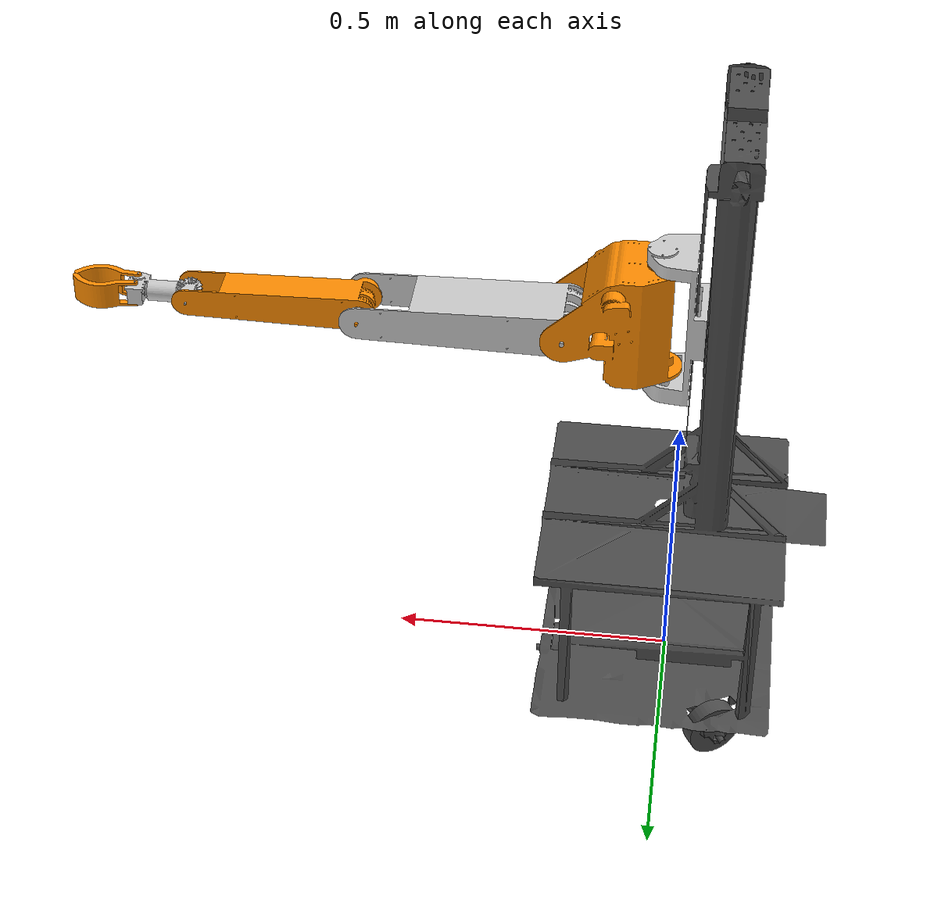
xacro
<?xml version="1.0"?>

<robot name="xmbot" xmlns:xacro="http://www.ros.org/wiki/xacro">

  <!-- The following xacro:include files set up definitions of parts of the robot body -->
  <xacro:include filename="$(find xm_arm_description)/urdf/materials.urdf.xacro" />
  <xacro:include filename="$(find xm_arm_description)/urdf/xm_base.urdf.xacro" />
  <xacro:include filename="$(find xm_arm_description)/urdf/xm_wheel.urdf.xacro" />
  <xacro:include filename="$(find xm_arm_description)/urdf/xm_arm.urdf.xacro" />
  <xacro:include filename="$(find xm_arm_description)/urdf/xm_gripper.urdf.xacro" />
  <xacro:include filename="$(find xm_arm_description)/urdf/xm_kinect.urdf.xacro" />
  <xacro:include filename="$(find xm_arm_description)/urdf/xm_laser.urdf.xacro" />

  <!-- Attach the base -->
  <base name="base" color="DarkGrey" />

  <!-- Add the drive wheels -->
  <wheel parent="base" suffix="1" color="DarkGrey" type="fixed"
         origin_xyz="0.19419 0.00022708 -0.042" origin_rpy="-1.5708 0 -1.5708"
         inert_origin_xyz="8.0491E-16 -1.3878E-17 -0.0042221"
         inert_ixx="0.00030696" inert_ixy="-3.4634E-22" inert_ixz="-7.3136E-19"
         inert_iyy="0.00030696" inert_iyz="8.9342E-21" inert_izz="0.00029643" />
  <wheel parent="base" suffix="2" color="DarkGrey" type="fixed"
         origin_xyz="-0.096968 -0.16833 -0.042" origin_rpy="-1.5708 0 2.618"
         inert_origin_xyz="-1.3878E-17 1.3878E-17 -0.0042221"
         inert_ixx="0.00030696" inert_ixy="1.0391E-20" inert_ixz="1.3553E-20"
         inert_iyy="0.00030696" inert_iyz="4.616E-21" inert_izz="0.00029643" />
  <wheel parent="base" suffix="3" color="DarkGrey" type="fixed"
         origin_xyz="-0.097362 0.1681 -0.042"   origin_rpy="-1.5708 0 0.5236"
         inert_origin_xyz="1.4572E-15 0 -0.0042221"
         inert_ixx="0.00030696" inert_ixy="-3.3256E-21" inert_ixz="2.7105E-20"
         inert_iyy="0.00030696" inert_iyz="-1.1933E-20" inert_izz="0.00029643" />

  <!-- Attach the arm -->
  <lift  name="lift"  parent="base" color="OffWhite" />
  <waist name="waist" parent="lift" color="Orange" />
  <big_arm name="big_arm" parent="waist" color="OffWhite" />
  <forearm name="forearm" parent="big_arm" color="Orange" />
  <wrist_pitching name="wrist_pitching" parent="forearm" color="OffWhite" />
  <wrist_rotation name="wrist_rotation" parent="wrist_pitching" color="OffWhite" />

  <!-- Attach the gripper -->
  <finger_left  name="finger_left"  parent="wrist_rotation" color="Orange" type="revolute" />
  <finger_right name="finger_right" parent="wrist_rotation" color="Orange" type="revolute" />
  <gripper_frame name="gripper_frame" parent="wrist_rotation" color="OffWhite" type="fixed" />

  <!-- Attach the kinect -->
  <head_kinect name="kinect" parent="base" color="DarkGrey" type="fixed" />

  <!-- Attach the laser -->
  <laser name="laser" parent="base" color="DarkGrey" />

</robot>

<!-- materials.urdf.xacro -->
<robot>

  <!-- Put all the color definitions in a separate file -->
  <material name="DarkBlack">
    <color rgba="0.0 0.0 0.0 1.0" />
  </material>

  <material name="Black">
    <color rgba="0.2 0.2 0.2 1.0" />
  </material>

   <material name="TransparentBlack">
    <color rgba="0.2 0.2 0.2 0.8" />
  </material>

  <material name="Orange">
    <color rgba="1.0 0.55 0.0 1.0" />
  </material>

  <material name="Grey">
    <color rgba="0.7 0.7 0.7 1.0" />
  </material>

  <material name="DarkGrey">
    <color rgba="0.3 0.3 0.3 1.0" />
  </material>

  <material name="Red">
    <color rgba="0.8 0.0 0.0 1.0" />
  </material>

  <material name="White">
    <color rgba="1.0 1.0 1.0 1.0" />
  </material>

  <material name="OffWhite">
    <color rgba="0.8 0.8 0.8 1.0" />
  </material>

  <material name="Blue">
    <color rgba="0.0 0.0 0.8 1.0" />
  </material>

  <material name="Green">
    <color rgba="0.0 0.8 0.0 1.0" />
  </material>

  <material name="TransparentGreen">
    <color rgba="0.0 0.8 0.0 0.5" />
  </material>

</robot>

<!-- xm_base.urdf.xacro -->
<robot name="base" xmlns:xacro="http://www.ros.org/wiki/xacro">

  <!-- The base xacro macro -->
  <macro name="base" params="name color">
    <link name="${name}_link">
      <inertial>
        <origin xyz="-0.030096 -0.00033289 0.43437" rpy="0 0 0" />
        <mass value="28.429" />
        <inertia ixx="3.3043" ixy="0.00011321" ixz="-0.22301"
                 iyy="3.3216" iyz="0.0036429" izz="0.40235" />
      </inertial>
      <visual>
        <origin xyz="0 0 0" rpy="0 0 0" />
        <geometry>
          <mesh filename="package://xm_arm_description/meshes/${name}_link.stl" />
        </geometry>
        <material name="${color}" />
      </visual>
      <collision>
        <origin xyz="0 0 0" rpy="0 0 0" />
        <geometry>
		      <mesh filename="package://xm_arm_description/meshes/${name}_link_l.stl" />
        </geometry>
      </collision>
    </link>
  </macro>

  <link name="base_footprint">
      <visual>
        <origin xyz="0 0 0" rpy="0 0 0" />
        <geometry>
          <box size="0.05 0.05 0.001" />
        </geometry>
        <material name="TransparentGreen" />
      </visual>
  </link>

  <joint name="base_joint" type="fixed">
    <origin xyz="0 0 0" rpy="0 0 0" />
    <parent link="base_footprint" />
    <child  link="base_link" />
  </joint>

</robot>

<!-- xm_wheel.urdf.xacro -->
<robot name="wheel" xmlns:xacro="http://www.ros.org/wiki/xacro">

  <!-- The wheel xacro macro -->
  <macro name="wheel" params="suffix parent color origin_xyz origin_rpy type inert_origin_xyz inert_ixx inert_ixy inert_ixz inert_iyy inert_iyz inert_izz">
    <joint name="joint_wheel_${suffix}" type="${type}">
      <origin xyz="${origin_xyz}" rpy="${origin_rpy}" />
      <parent link="${parent}_link" />
      <child link="link_wheel_${suffix}" />
      <axis xyz="0 0 1" />
    </joint>

    <link name="link_wheel_${suffix}">
      <inertial>
        <origin xyz="${inert_origin_xyz}" rpy="0 0 0" />
        <mass value="0.34065" />
        <inertia ixx="${inert_ixx}" ixy="${inert_ixy}" ixz="${inert_ixz}"
                 iyy="${inert_iyy}" iyz="${inert_iyz}" izz="${inert_izz}" />
      </inertial>
      <visual>
        <origin xyz="0 0 0" rpy="0 0 0" />
        <geometry>
          <mesh filename="package://xm_arm_description/meshes/link_wheel_${suffix}.stl" />
        </geometry>
        <material name="${color}" />
      </visual>
      <collision>
	      <origin xyz="0 0 0" rpy="0 0 0" />
        <geometry>
          <mesh filename="package://xm_arm_description/meshes/link_wheel_${suffix}_l.stl" />
        </geometry>
      </collision>
    </link>
  </macro>

</robot>

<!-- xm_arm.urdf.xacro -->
<robot name="arm" xmlns:xacro="http://www.ros.org/wiki/xacro">

  <!--The lift xacro macro-->
  <macro name="lift" params="parent name color">
    <joint name="joint_${name}" type="prismatic">
      <origin xyz="-0.04456 0.00022708 0.72985" rpy="-2.7756E-17 0 -1.5708" />
      <parent link="${parent}_link" />
      <child  link="link_${name}" />
      <axis xyz="0 0 -1" />
      <limit lower="-0.15" upper="0.15" effort="500" velocity="1" />
    </joint>

    <link name="link_${name}">
       <inertial>
         <origin xyz="-8.3267E-17 0.048515 0.0020048" rpy="0 0 0" />
         <mass value="1.7076" />
         <inertia ixx="0.015015" ixy="2.1531E-18" ixz="-3.952E-19"
                  iyy="0.015774" iyz="-8.1536E-05" izz="0.0028516" />
      </inertial>
      <visual>
        <origin xyz="0 0 0" rpy="0 0 0" />
        <geometry>
          <mesh filename="package://xm_arm_description/meshes/link_${name}.stl" />
        </geometry>
        <material name="${color}" />
      </visual>
      <collision>
        <origin xyz="0 0 0" rpy="0 0 0" />
        <geometry>
          <mesh filename="package://xm_arm_description/meshes/link_${name}_l.stl" />
        </geometry>
      </collision>
    </link>
  </macro>

  <!--The waist xacro macro-->
  <macro name="waist" params="parent name color">
    <joint name="joint_${name}" type="revolute">
      <origin xyz="0 0.0945 0.00415" rpy="2.7756E-17 1.3056E-31 -2.8372E-16" />
      <parent link="link_${parent}" />
      <child  link="link_${name}" />
      <axis xyz="0 0 1" />
      <limit lower="-1.047" upper="1.047" effort="500" velocity="1" />
    </joint>

    <link name="link_${name}">
      <inertial>
        <origin xyz="0.00035629 0.050223 0.014835" rpy="0 0 0" />
        <mass value="2.2632" />
        <inertia ixx="0.014881" ixy="2.8517E-05" ixz="-0.00013888"
                 iyy="0.015217" iyz="0.00052947" izz="0.0095668" />
      </inertial>
      <visual>
        <origin xyz="0 0 0" rpy="0 0 0" />
        <geometry>
          <mesh filename="package://xm_arm_description/meshes/link_${name}.stl" />
        </geometry>
        <material name="${color}" />
      </visual>
      <collision>
        <origin xyz="0 0 0" rpy="0 0 0" />
        <geometry>
          <mesh filename="package://xm_arm_description/meshes/link_${name}_l.stl" />
        </geometry>
      </collision>
    </link>
  </macro>

  <!--The big_arm xacro macro-->
  <macro name="big_arm" params="parent name color">
    <joint name="joint_${name}" type="revolute">
      <origin xyz="0 0.15678 -0.018" rpy="1.5708 -7.7037E-34 1.5708" />
      <parent link="link_${parent}" />
      <child  link="link_${name}" />
      <axis xyz="0 0 1" />
      <limit lower="-1.920" upper="1.396" effort="500" velocity="1" />
    </joint>

    <link name="link_${name}">
      <inertial>
        <origin xyz="0.095008 0.006168 0.0026321" rpy="0 0 0" />
        <mass value="1.2241" />
        <inertia ixx="0.0030013" ixy="0.00024375" ixz="0.0004659"
                 iyy="0.017469" iyz="-1.9873E-05" izz="0.015447" />
      </inertial>
      <visual>
        <origin xyz="0 0 0" rpy="0 0 0" />
        <geometry>
          <mesh filename="package://xm_arm_description/meshes/link_${name}.stl" />
        </geometry>
        <material name="${color}" />
      </visual>
      <collision>
        <origin xyz="0 0 0" rpy="0 0 0" />
        <geometry>
          <mesh filename="package://xm_arm_description/meshes/link_${name}_l.stl" />
        </geometry>
      </collision>
    </link>
  </macro>

  <!--The forearm xacro macro-->
  <macro name="forearm" params="parent name color">
    <joint name="joint_${name}" type="revolute">
      <origin xyz="0.35 0 0" rpy="-6.4095E-31 2.2204E-16 -7.7037E-34" />
      <parent link="link_${parent}" />
      <child  link="link_${name}" />
      <axis xyz="0 0 -1" />
      <limit lower="-2.234" upper="2.234" effort="500" velocity="1" />
    </joint>

    <link name="link_${name}">
      <inertial>
        <origin xyz="0.099759 -2.2204E-16 0.00013669" rpy="0 0 0" />
        <mass value="0.70102" />
        <inertia ixx="0.00073291" ixy="5.0551E-18" ixz="4.274E-05"
                 iyy="0.0069521" iyz="7.8112E-19" izz="0.0066437" />
      </inertial>
      <visual>
        <origin xyz="0 0 0" rpy="0 0 0" />
        <geometry>
          <mesh filename="package://xm_arm_description/meshes/link_${name}.stl" />
        </geometry>
        <material name="${color}" />
      </visual>
      <collision>
        <origin xyz="0 0 0" rpy="0 0 0" />
        <geometry>
          <mesh filename="package://xm_arm_description/meshes/link_${name}_l.stl" />
        </geometry>
      </collision>
    </link>
  </macro>

  <!--The wristing_pitching xacro macro-->
  <macro name="wrist_pitching" params="parent name color">
    <joint name="joint_${name}" type="revolute">
      <origin xyz="0.3 0 0" rpy="0 0 1.5708" />
      <parent link="link_${parent}" />
      <child  link="link_${name}" />
      <axis xyz="0 0 -1" />
      <limit lower="-2.182" upper="2.182" effort="500" velocity="1" />
    </joint>

    <link name="link_${name}">
      <inertial>
        <origin xyz="1.7127E-09 -0.00034153 -1.195E-06" rpy="0 0 0" />
        <mass value="0.037514" />
        <inertia ixx="1.063E-05" ixy="1.0698E-13" ixz="-4.4237E-13"
                 iyy="1.0507E-05" iyz="-1.5531E-11" izz="3.2674E-06" />
      </inertial>
      <visual>
        <origin xyz="0 0 0" rpy="0 0 0" />
        <geometry>
          <mesh filename="package://xm_arm_description/meshes/link_${name}.stl" />
        </geometry>
        <material name="${color}" />
      </visual>
      <collision>
        <origin xyz="0 0 0" rpy="0 0 0" />
        <geometry>
          <mesh filename="package://xm_arm_description/meshes/link_${name}_l.stl" />
        </geometry>
      </collision>
    </link>
  </macro>

  <!--The wristing_rotation xacro macro-->
  <macro name="wrist_rotation" params="parent name color">
    <joint name="joint_${name}" type="continuous">
      <origin xyz="0 0 0" rpy="1.5708 -1.5708 0" />
      <parent link="link_${parent}" />
      <child  link="link_${name}" />
      <axis xyz="0 0 1" />
      <limit effort="500" velocity="1" />
    </joint>

    <link name="link_${name}">
      <inertial>
        <origin xyz="0.00041743 -0.00042922 0.069037" rpy="0 0 0" />
        <mass value="0.12901" />
        <inertia ixx="0.00010496" ixy="-2.1936E-07" ixz="5.5636E-07"
                 iyy="0.00011251" iyz="-1.2571E-06" izz="3.1759E-05" />
      </inertial>
      <visual>
        <origin xyz="0 0 0" rpy="0 0 0" />
        <geometry>
          <mesh filename="package://xm_arm_description/meshes/link_${name}.stl" />
        </geometry>
        <material name="${color}" />
      </visual>
      <collision>
        <origin xyz="0 0 0" rpy="0 0 0" />
        <geometry>
          <mesh filename="package://xm_arm_description/meshes/link_${name}_l.stl" />
        </geometry>
      </collision>
    </link>
  </macro>

</robot>

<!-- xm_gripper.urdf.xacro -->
<robot name="gripper" xmlns:xacro="http://www.ros.org/wiki/xacro">

  <!--The finger_left xacro macro-->
  <macro name="finger_left" params="name parent color type">
    <joint name="joint_${name}" type="${type}">
      <origin xyz="-0.01295 -0.00014458 0.091042" rpy="1.5708 -1.5708 0" />
      <parent link="link_${parent}" />
      <child link="link_${name}" />
      <axis xyz="0 0 -1" />
      <limit lower="-1.571" upper="0" effort="500" velocity="1" />
    </joint>

    <link name="link_${name}">
      <inertial>
        <origin xyz="0.067181 0.0073582 -2.014E-08" rpy="0 0 0" />
        <mass value="0.054127" />
        <inertia ixx="1.3972E-05" ixy="-3.6354E-06" ixz="-1.1594E-10"
                 iyy="5.1741E-05" iyz="-1.601E-12" izz="4.3944E-05" />
      </inertial>
      <visual>
        <origin xyz="0 0 0" rpy="0 0 0" />
        <geometry>
          <mesh filename="package://xm_arm_description/meshes/link_${name}.stl" />
        </geometry>
        <material name="${color}" />
      </visual>
      <collision>
        <origin xyz="0 0 0" rpy="0 0 0" />
        <geometry>
          <mesh filename="package://xm_arm_description/meshes/link_${name}_l.stl" />
        </geometry>
      </collision>
    </link>
  </macro>

  <!--The finger_right xacro macro-->
  <macro name="finger_right" params="name parent color type">
    <joint name="joint_${name}" type="${type}">
      <origin xyz="0.01295 -0.00014458 0.091042" rpy="1.5708 -1.5708 0" />
      <parent link="link_${parent}" />
      <child link="link_${name}" />
      <axis xyz="0 0 -1" />
      <limit lower="0" upper="1.571" effort="500" velocity="1" />
    </joint>

    <link name="link_${name}">
      <inertial>
        <origin xyz="0.067181 -0.0073582 2.014E-08" rpy="0 0 0" />
        <mass value="0.054127" />
        <inertia ixx="1.3972E-05" ixy="3.6354E-06" ixz="1.1594E-10"
                 iyy="5.1741E-05" iyz="-1.601E-12" izz="4.3944E-05" />
      </inertial>
      <visual>
        <origin xyz="0 0 0" rpy="0 0 0" />
        <geometry>
          <mesh filename="package://xm_arm_description/meshes/link_${name}.stl" />
        </geometry>
        <material name="${color}" />
      </visual>
      <collision>
        <origin xyz="0 0 0" rpy="0 0 0" />
        <geometry>
          <mesh filename="package://xm_arm_description/meshes/link_${name}_l.stl" />
        </geometry>
      </collision>
    </link>
  </macro>

  <!--The gripper_frame xacro macro-->
  <macro name="gripper_frame" params="name parent color type">
    <joint name="joint_${name}" type="${type}">
      <origin xyz="0 0 0.16" rpy="0 0 0" />
      <parent link="link_${parent}" />
      <child link="link_${name}" />
    </joint>

    <link name="link_${name}">
      <inertial>
        <origin xyz="0 0 0" rpy="0 0 0" />
        <mass value="0.0001" />
        <inertia ixx="0.0" ixy="0.0" ixz="0.0"
                 iyy="0.0" iyz="0.0" izz="0.0" />
      </inertial>
    </link>
  </macro>

</robot>

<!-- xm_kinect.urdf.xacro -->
<robot name="kinect" xmlns:xacro="http://www.ros.org/wiki/xacro">
<xacro:property name="M_PI" value="3.1415926535897931" />

   <!--The kinect xacro macro-->
  <macro name="head_kinect" params="parent name color type">
    <joint name="joint_${name}" type="${type}">
      <origin xyz="-0.06656 0.00022708 1.1145" rpy="1.5708 0 -6.1679E-17" />
      <parent link="${parent}_link" />
      <child  link="link_${name}" />
      <axis xyz="0 0 1" />
      <limit lower="-0.523" upper="0.523" effort="500" velocity="1" />
    </joint>

    <link name="link_${name}">
      <inertial>
        <origin xyz="0.00024993 -0.00050157 -3.2753E-09" rpy="0 0 0" />
        <mass value="1.3398" />
        <inertia ixx="0.007821" ixy="-3.6481E-06" ixz="1.9233E-11"
                 iyy="0.0080704" iyz="7.704E-11" izz="0.00058859" />
      </inertial>
      <visual>
        <origin xyz="0 0 0" rpy="0 0 0" />
        <geometry>
          <mesh filename="package://xm_arm_description/meshes/link_${name}.stl" />
        </geometry>
        <material name="${color}" />
      </visual>
      <collision>
        <origin xyz="0 0 0" rpy="0 0 0" />
        <geometry>
          <mesh filename="package://xm_arm_description/meshes/link_${name}_l.stl" />
        </geometry>
      </collision>
    </link>
  </macro>

  <joint name="kinect_depth_joint" type="fixed">
    <origin xyz="0 0 0" rpy="-${M_PI/2} 0 -${M_PI/2}" />
    <parent link="link_kinect" />
    <child link="link_kinect_depth" />
  </joint>

  <link name="link_kinect_depth" />

</robot>

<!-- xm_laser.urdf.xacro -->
<robot name="laser" xmlns:xacro="http://www.ros.org/wiki/xacro">

  <!--The laser xacro macro-->
  <macro name="laser" params="parent name color">
    <joint name="joint_${name}" type="fixed">
      <origin xyz="0.20674 0.00022708 0.181" rpy="-6.7054E-18 6.9389E-17 -1.5708" />
      <parent link="${parent}_link" />
      <child link="link_${name}" />
      <axis xyz="0 0 0" />
    </joint>

    <link name="link_${name}">
      <inertial>
        <origin xyz="0 -3.8367E-05 -0.0055273" rpy="0 0 0" />
        <mass value="0.1221" />
        <inertia ixx="6.4774E-05" ixy="-4.322E-13" ixz="7.0123E-21"
                 iyy="6.4681E-05" iyz="-1.0865E-07" izz="3.7788E-05" />
      </inertial>
      <visual>
        <origin xyz="0 0 0" rpy="0 0 0" />
        <geometry>
          <mesh filename="package://xm_arm_description/meshes/link_${name}.stl" />
        </geometry>
        <material name="${color}" />
      </visual>
      <collision>
        <origin xyz="0 0 0" rpy="0 0 0" />
        <geometry>
          <mesh filename="package://xm_arm_description/meshes/link_${name}_l.stl" />
        </geometry>
      </collision>
    </link>
  </macro>

</robot>
